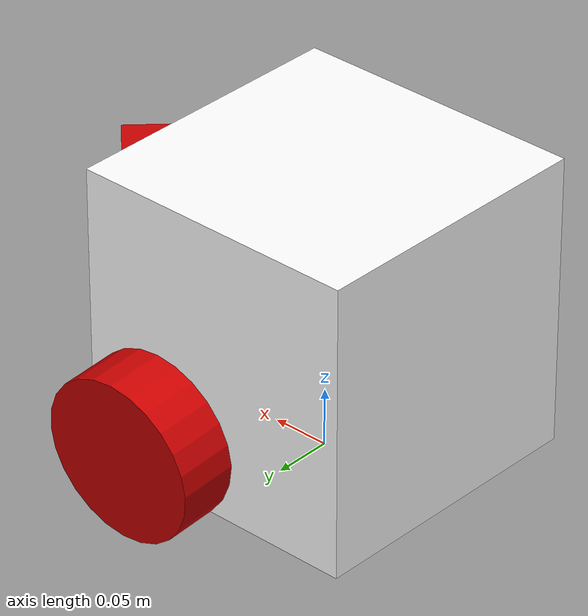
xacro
<?xml version="1.0"?>

<robot name="turtle_pose">

  <material name="red">
    <color rgba="0.8 0 0 1"/>
  </material>
  <material name="white">
    <color rgba="1 1 1 1"/>
  </material>

  <link name="map">
  </link>

  <joint name="world_to_box" type="fixed">
    <parent link="map"/>
    <child link="imu_link"/>
    <origin xyz="0.0 0.0 0"/>
  </joint>

  <link name="imu_link">
    <visual>
      <origin xyz="0.0 0.0 0.125" rpy="0.0 0.0 0.0"/>
      <geometry>
        <box size = "0.25 0.25 0.25"/>
      </geometry>
      <material name="white"/>
    </visual>
  </link>

  <joint name="box_to_arrow" type="fixed">
    <parent link="imu_link"/>
    <child link="arrow"/>
    <origin xyz="0.0 0.0 0"/>
  </joint>

  <link name = "arrow">
    <visual>
      <geometry>
        <box size = "0.125 0.125 0.1"/>
      </geometry>
      <origin xyz="0.125 0 0.15" rpy="0 0 0.7854"/>
      <material name="red"/>
    </visual>

    <visual>
      <geometry>
        <cylinder length="0.05" radius="0.07" />
      </geometry>
      <origin xyz="0.05 0.15 0.05" rpy="1.5 0 0"/>
      <material name="red"/>
    </visual>

    <visual>
      <geometry>
        <cylinder length="0.05" radius="0.07" />
      </geometry>
      <origin xyz="0.05 -0.15 0.05" rpy="1.5 0 0"/>
      <material name="red"/>
    </visual>

  </link>
</robot>
